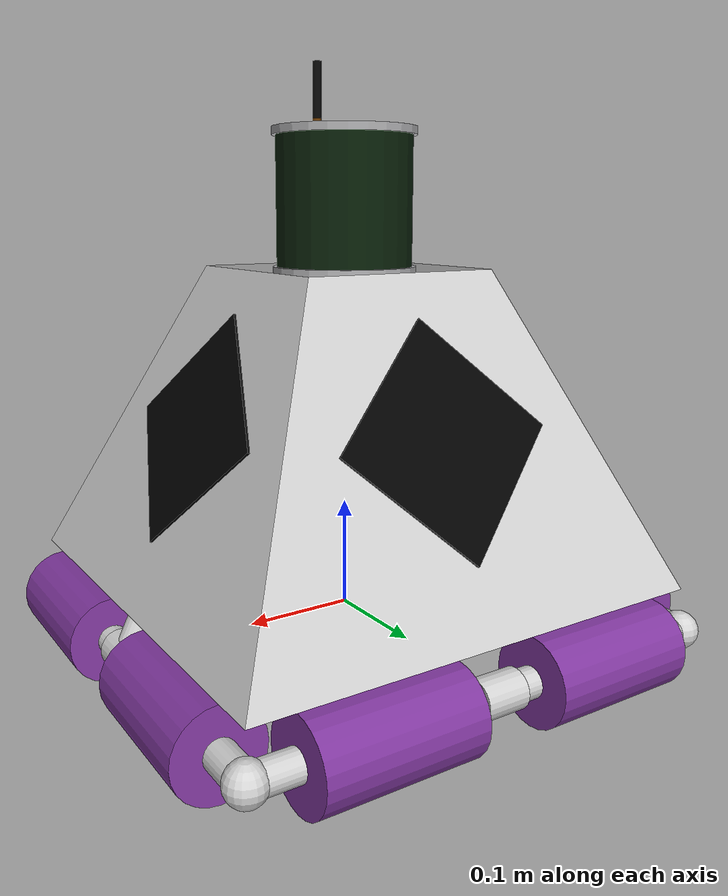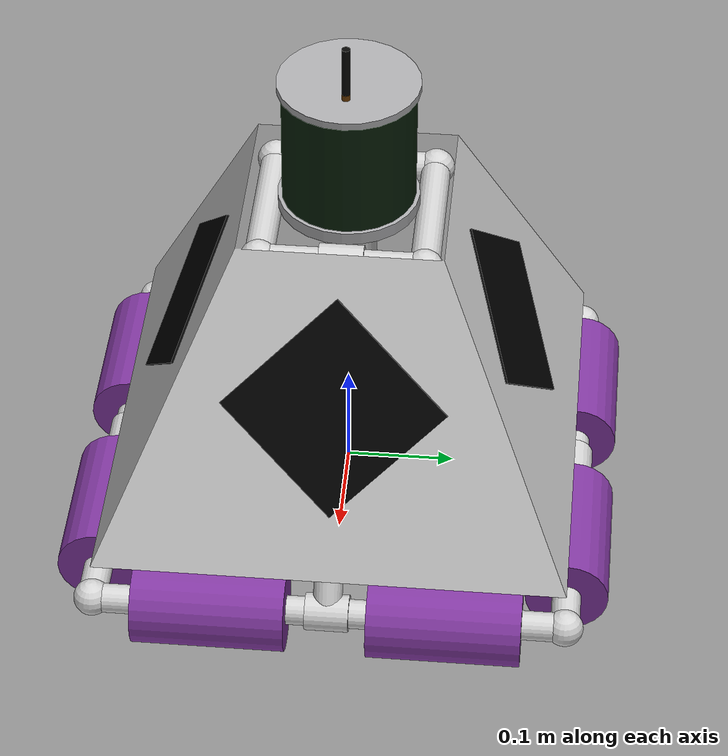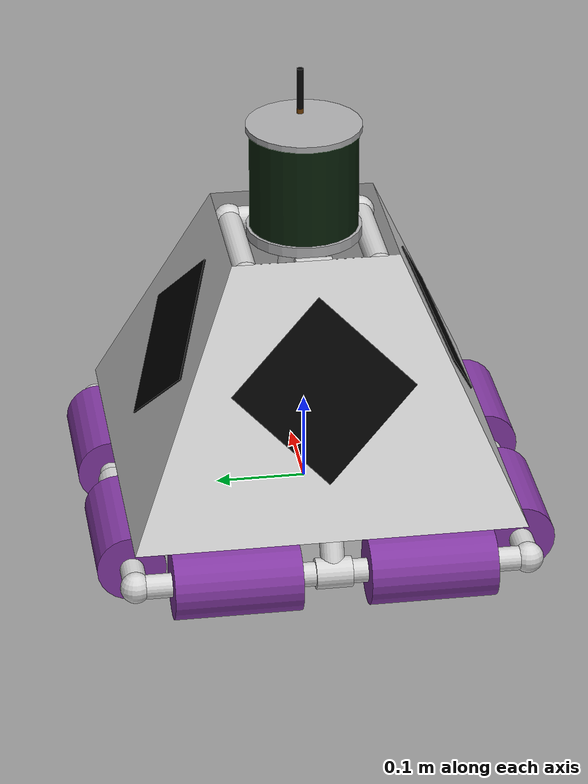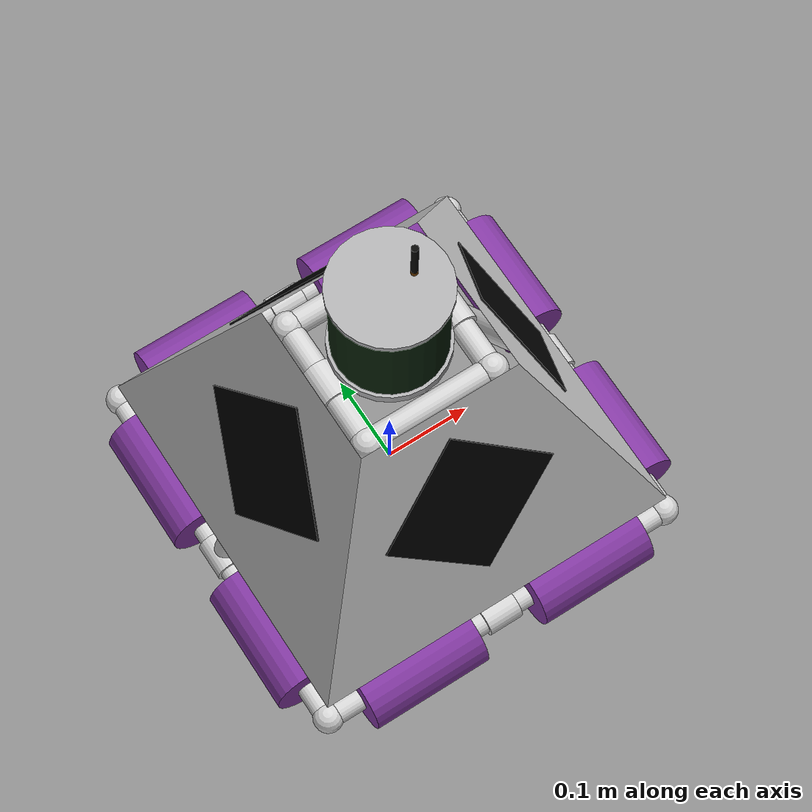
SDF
<?xml version="1.0"?>
<sdf version="1.9">
  <model name="roboboat_color_indicator_buoy_green">
    <link name="link">
      <inertial>
        <pose>0 0 -0.2 0 0 0</pose>
        <mass>2.5</mass>
        <inertia>
          <ixx>0.08</ixx>
          <ixy>0</ixy>
          <ixz>0</ixz>
          <iyy>0.08</iyy>
          <iyz>0</iyz>
          <izz>0.08</izz>
        </inertia>
      </inertial>
      <collision name="panels_collision">
        <pose>0 0 0.1778 0 0 0</pose>
        <geometry>
          <box><size>0.4318 0.4318 0.2794</size></box>
        </geometry>
      </collision>
      <collision name="indicator_collision">
        <pose>0 0 0.3726 0 0 0</pose>
        <geometry>
          <cylinder><radius>0.064</radius><length>0.1315</length></cylinder>
        </geometry>
      </collision>
      <collision name="floats_collision">
        <geometry>
          <box><size>0.53 0.53 0.0762</size></box>
        </geometry>
      </collision>
      <visual name="panels">
        <geometry>
          <mesh>
            <uri>model://roboboat_color_indicator_buoy_red/meshes/frustum.obj</uri>
          </mesh>
        </geometry>
        <material>
          <ambient>0.8276 0.8276 0.8276 1</ambient>
          <diffuse>0.8276 0.8276 0.8276 1</diffuse>
          <specular>0.1 0.1 0.1 1</specular>
        </material>
      </visual>
      <visual name="diamond_0">
        <pose>0.151 0 0.189 0.7854 -0.4172 0</pose>
        <geometry>
          <box><size>0.002 0.1437 0.1437</size></box>
        </geometry>
        <material>
          <ambient>0.0044 0.0044 0.0044 1</ambient>
          <diffuse>0.0044 0.0044 0.0044 1</diffuse>
          <specular>0.1 0.1 0.1 1</specular>
        </material>
      </visual>
      <visual name="diamond_1">
        <pose>0 0.151 0.189 0.7854 -0.4172 1.5708</pose>
        <geometry>
          <box><size>0.002 0.1437 0.1437</size></box>
        </geometry>
        <material>
          <ambient>0.0044 0.0044 0.0044 1</ambient>
          <diffuse>0.0044 0.0044 0.0044 1</diffuse>
          <specular>0.1 0.1 0.1 1</specular>
        </material>
      </visual>
      <visual name="diamond_2">
        <pose>-0.151 0 0.189 0.7854 -0.4172 3.1416</pose>
        <geometry>
          <box><size>0.002 0.1437 0.1437</size></box>
        </geometry>
        <material>
          <ambient>0.0044 0.0044 0.0044 1</ambient>
          <diffuse>0.0044 0.0044 0.0044 1</diffuse>
          <specular>0.1 0.1 0.1 1</specular>
        </material>
      </visual>
      <visual name="diamond_3">
        <pose>0 -0.151 0.189 0.7854 -0.4172 -1.5708</pose>
        <geometry>
          <box><size>0.002 0.1437 0.1437</size></box>
        </geometry>
        <material>
          <ambient>0.0044 0.0044 0.0044 1</ambient>
          <diffuse>0.0044 0.0044 0.0044 1</diffuse>
          <specular>0.1 0.1 0.1 1</specular>
        </material>
      </visual>
      <visual name="pvc_bottom_0">
        <pose>0.2159 0 0 1.5708 0 0</pose>
        <geometry>
          <cylinder><radius>0.0133</radius><length>0.4318</length></cylinder>
        </geometry>
        <material>
          <ambient>0.8276 0.8276 0.8276 1</ambient>
          <diffuse>0.8276 0.8276 0.8276 1</diffuse>
          <specular>0.1 0.1 0.1 1</specular>
        </material>
      </visual>
      <visual name="elbow_bottom_0">
        <pose>0.2159 0.2159 0 0 0 0</pose>
        <geometry>
          <sphere><radius>0.017</radius></sphere>
        </geometry>
        <material>
          <ambient>0.8276 0.8276 0.8276 1</ambient>
          <diffuse>0.8276 0.8276 0.8276 1</diffuse>
          <specular>0.1 0.1 0.1 1</specular>
        </material>
      </visual>
      <visual name="tee_bottom_0">
        <pose>0.2159 0 0 1.5708 0 0</pose>
        <geometry>
          <cylinder><radius>0.017</radius><length>0.04</length></cylinder>
        </geometry>
        <material>
          <ambient>0.8276 0.8276 0.8276 1</ambient>
          <diffuse>0.8276 0.8276 0.8276 1</diffuse>
          <specular>0.1 0.1 0.1 1</specular>
        </material>
      </visual>
      <visual name="pvc_top_0">
        <pose>0.0737 0 0.2935 1.5708 0 0</pose>
        <geometry>
          <cylinder><radius>0.0133</radius><length>0.1473</length></cylinder>
        </geometry>
        <material>
          <ambient>0.8276 0.8276 0.8276 1</ambient>
          <diffuse>0.8276 0.8276 0.8276 1</diffuse>
          <specular>0.1 0.1 0.1 1</specular>
        </material>
      </visual>
      <visual name="elbow_top_0">
        <pose>0.0737 0.0737 0.2935 0 0 0</pose>
        <geometry>
          <sphere><radius>0.017</radius></sphere>
        </geometry>
        <material>
          <ambient>0.8276 0.8276 0.8276 1</ambient>
          <diffuse>0.8276 0.8276 0.8276 1</diffuse>
          <specular>0.1 0.1 0.1 1</specular>
        </material>
      </visual>
      <visual name="strut_0">
        <pose>0.1448 0 0.1468 0 0.4512 3.1416</pose>
        <geometry>
          <cylinder><radius>0.0133</radius><length>0.3262</length></cylinder>
        </geometry>
        <material>
          <ambient>0.8276 0.8276 0.8276 1</ambient>
          <diffuse>0.8276 0.8276 0.8276 1</diffuse>
          <specular>0.1 0.1 0.1 1</specular>
        </material>
      </visual>
      <visual name="tee_top_0">
        <pose>0.0737 0 0.2935 1.5708 0 0</pose>
        <geometry>
          <cylinder><radius>0.017</radius><length>0.04</length></cylinder>
        </geometry>
        <material>
          <ambient>0.8276 0.8276 0.8276 1</ambient>
          <diffuse>0.8276 0.8276 0.8276 1</diffuse>
          <specular>0.1 0.1 0.1 1</specular>
        </material>
      </visual>
      <visual name="pvc_bottom_1">
        <pose>0 0.2159 0 1.5708 0 1.5708</pose>
        <geometry>
          <cylinder><radius>0.0133</radius><length>0.4318</length></cylinder>
        </geometry>
        <material>
          <ambient>0.8276 0.8276 0.8276 1</ambient>
          <diffuse>0.8276 0.8276 0.8276 1</diffuse>
          <specular>0.1 0.1 0.1 1</specular>
        </material>
      </visual>
      <visual name="elbow_bottom_1">
        <pose>-0.2159 0.2159 0 0 0 0</pose>
        <geometry>
          <sphere><radius>0.017</radius></sphere>
        </geometry>
        <material>
          <ambient>0.8276 0.8276 0.8276 1</ambient>
          <diffuse>0.8276 0.8276 0.8276 1</diffuse>
          <specular>0.1 0.1 0.1 1</specular>
        </material>
      </visual>
      <visual name="tee_bottom_1">
        <pose>0 0.2159 0 1.5708 0 1.5708</pose>
        <geometry>
          <cylinder><radius>0.017</radius><length>0.04</length></cylinder>
        </geometry>
        <material>
          <ambient>0.8276 0.8276 0.8276 1</ambient>
          <diffuse>0.8276 0.8276 0.8276 1</diffuse>
          <specular>0.1 0.1 0.1 1</specular>
        </material>
      </visual>
      <visual name="pvc_top_1">
        <pose>0 0.0737 0.2935 1.5708 0 1.5708</pose>
        <geometry>
          <cylinder><radius>0.0133</radius><length>0.1473</length></cylinder>
        </geometry>
        <material>
          <ambient>0.8276 0.8276 0.8276 1</ambient>
          <diffuse>0.8276 0.8276 0.8276 1</diffuse>
          <specular>0.1 0.1 0.1 1</specular>
        </material>
      </visual>
      <visual name="elbow_top_1">
        <pose>-0.0737 0.0737 0.2935 0 0 0</pose>
        <geometry>
          <sphere><radius>0.017</radius></sphere>
        </geometry>
        <material>
          <ambient>0.8276 0.8276 0.8276 1</ambient>
          <diffuse>0.8276 0.8276 0.8276 1</diffuse>
          <specular>0.1 0.1 0.1 1</specular>
        </material>
      </visual>
      <visual name="pvc_bottom_2">
        <pose>-0.2159 0 0 1.5708 0 3.1416</pose>
        <geometry>
          <cylinder><radius>0.0133</radius><length>0.4318</length></cylinder>
        </geometry>
        <material>
          <ambient>0.8276 0.8276 0.8276 1</ambient>
          <diffuse>0.8276 0.8276 0.8276 1</diffuse>
          <specular>0.1 0.1 0.1 1</specular>
        </material>
      </visual>
      <visual name="elbow_bottom_2">
        <pose>-0.2159 -0.2159 0 0 0 0</pose>
        <geometry>
          <sphere><radius>0.017</radius></sphere>
        </geometry>
        <material>
          <ambient>0.8276 0.8276 0.8276 1</ambient>
          <diffuse>0.8276 0.8276 0.8276 1</diffuse>
          <specular>0.1 0.1 0.1 1</specular>
        </material>
      </visual>
      <visual name="tee_bottom_2">
        <pose>-0.2159 0 0 1.5708 0 3.1416</pose>
        <geometry>
          <cylinder><radius>0.017</radius><length>0.04</length></cylinder>
        </geometry>
        <material>
          <ambient>0.8276 0.8276 0.8276 1</ambient>
          <diffuse>0.8276 0.8276 0.8276 1</diffuse>
          <specular>0.1 0.1 0.1 1</specular>
        </material>
      </visual>
      <visual name="pvc_top_2">
        <pose>-0.0737 0 0.2935 1.5708 0 3.1416</pose>
        <geometry>
          <cylinder><radius>0.0133</radius><length>0.1473</length></cylinder>
        </geometry>
        <material>
          <ambient>0.8276 0.8276 0.8276 1</ambient>
          <diffuse>0.8276 0.8276 0.8276 1</diffuse>
          <specular>0.1 0.1 0.1 1</specular>
        </material>
      </visual>
      <visual name="elbow_top_2">
        <pose>-0.0737 -0.0737 0.2935 0 0 0</pose>
        <geometry>
          <sphere><radius>0.017</radius></sphere>
        </geometry>
        <material>
          <ambient>0.8276 0.8276 0.8276 1</ambient>
          <diffuse>0.8276 0.8276 0.8276 1</diffuse>
          <specular>0.1 0.1 0.1 1</specular>
        </material>
      </visual>
      <visual name="strut_2">
        <pose>-0.1448 0 0.1468 0 0.4512 0</pose>
        <geometry>
          <cylinder><radius>0.0133</radius><length>0.3262</length></cylinder>
        </geometry>
        <material>
          <ambient>0.8276 0.8276 0.8276 1</ambient>
          <diffuse>0.8276 0.8276 0.8276 1</diffuse>
          <specular>0.1 0.1 0.1 1</specular>
        </material>
      </visual>
      <visual name="tee_top_2">
        <pose>-0.0737 0 0.2935 1.5708 0 3.1416</pose>
        <geometry>
          <cylinder><radius>0.017</radius><length>0.04</length></cylinder>
        </geometry>
        <material>
          <ambient>0.8276 0.8276 0.8276 1</ambient>
          <diffuse>0.8276 0.8276 0.8276 1</diffuse>
          <specular>0.1 0.1 0.1 1</specular>
        </material>
      </visual>
      <visual name="pvc_bottom_3">
        <pose>0 -0.2159 0 1.5708 0 4.7124</pose>
        <geometry>
          <cylinder><radius>0.0133</radius><length>0.4318</length></cylinder>
        </geometry>
        <material>
          <ambient>0.8276 0.8276 0.8276 1</ambient>
          <diffuse>0.8276 0.8276 0.8276 1</diffuse>
          <specular>0.1 0.1 0.1 1</specular>
        </material>
      </visual>
      <visual name="elbow_bottom_3">
        <pose>0.2159 -0.2159 0 0 0 0</pose>
        <geometry>
          <sphere><radius>0.017</radius></sphere>
        </geometry>
        <material>
          <ambient>0.8276 0.8276 0.8276 1</ambient>
          <diffuse>0.8276 0.8276 0.8276 1</diffuse>
          <specular>0.1 0.1 0.1 1</specular>
        </material>
      </visual>
      <visual name="tee_bottom_3">
        <pose>0 -0.2159 0 1.5708 0 4.7124</pose>
        <geometry>
          <cylinder><radius>0.017</radius><length>0.04</length></cylinder>
        </geometry>
        <material>
          <ambient>0.8276 0.8276 0.8276 1</ambient>
          <diffuse>0.8276 0.8276 0.8276 1</diffuse>
          <specular>0.1 0.1 0.1 1</specular>
        </material>
      </visual>
      <visual name="pvc_top_3">
        <pose>0 -0.0737 0.2935 1.5708 0 4.7124</pose>
        <geometry>
          <cylinder><radius>0.0133</radius><length>0.1473</length></cylinder>
        </geometry>
        <material>
          <ambient>0.8276 0.8276 0.8276 1</ambient>
          <diffuse>0.8276 0.8276 0.8276 1</diffuse>
          <specular>0.1 0.1 0.1 1</specular>
        </material>
      </visual>
      <visual name="elbow_top_3">
        <pose>0.0737 -0.0737 0.2935 0 0 0</pose>
        <geometry>
          <sphere><radius>0.017</radius></sphere>
        </geometry>
        <material>
          <ambient>0.8276 0.8276 0.8276 1</ambient>
          <diffuse>0.8276 0.8276 0.8276 1</diffuse>
          <specular>0.1 0.1 0.1 1</specular>
        </material>
      </visual>
      <visual name="float_0">
        <pose>0.2159 -0.107 0 1.5708 0 0</pose>
        <geometry>
          <cylinder><radius>0.0381</radius><length>0.1397</length></cylinder>
        </geometry>
        <material>
          <ambient>0.5086 0.2196 0.6313 1</ambient>
          <diffuse>0.5086 0.2196 0.6313 1</diffuse>
          <specular>0.1 0.1 0.1 1</specular>
        </material>
      </visual>
      <visual name="float_1">
        <pose>0.2159 0.107 0 1.5708 0 0</pose>
        <geometry>
          <cylinder><radius>0.0381</radius><length>0.1397</length></cylinder>
        </geometry>
        <material>
          <ambient>0.5086 0.2196 0.6313 1</ambient>
          <diffuse>0.5086 0.2196 0.6313 1</diffuse>
          <specular>0.1 0.1 0.1 1</specular>
        </material>
      </visual>
      <visual name="float_2">
        <pose>0.107 0.2159 0 1.5708 0 1.5708</pose>
        <geometry>
          <cylinder><radius>0.0381</radius><length>0.1397</length></cylinder>
        </geometry>
        <material>
          <ambient>0.5086 0.2196 0.6313 1</ambient>
          <diffuse>0.5086 0.2196 0.6313 1</diffuse>
          <specular>0.1 0.1 0.1 1</specular>
        </material>
      </visual>
      <visual name="float_3">
        <pose>-0.107 0.2159 0 1.5708 0 1.5708</pose>
        <geometry>
          <cylinder><radius>0.0381</radius><length>0.1397</length></cylinder>
        </geometry>
        <material>
          <ambient>0.5086 0.2196 0.6313 1</ambient>
          <diffuse>0.5086 0.2196 0.6313 1</diffuse>
          <specular>0.1 0.1 0.1 1</specular>
        </material>
      </visual>
      <visual name="float_4">
        <pose>-0.2159 0.107 0 1.5708 0 3.1416</pose>
        <geometry>
          <cylinder><radius>0.0381</radius><length>0.1397</length></cylinder>
        </geometry>
        <material>
          <ambient>0.5086 0.2196 0.6313 1</ambient>
          <diffuse>0.5086 0.2196 0.6313 1</diffuse>
          <specular>0.1 0.1 0.1 1</specular>
        </material>
      </visual>
      <visual name="float_5">
        <pose>-0.2159 -0.107 0 1.5708 0 3.1416</pose>
        <geometry>
          <cylinder><radius>0.0381</radius><length>0.1397</length></cylinder>
        </geometry>
        <material>
          <ambient>0.5086 0.2196 0.6313 1</ambient>
          <diffuse>0.5086 0.2196 0.6313 1</diffuse>
          <specular>0.1 0.1 0.1 1</specular>
        </material>
      </visual>
      <visual name="float_6">
        <pose>-0.107 -0.2159 0 1.5708 0 4.7124</pose>
        <geometry>
          <cylinder><radius>0.0381</radius><length>0.1397</length></cylinder>
        </geometry>
        <material>
          <ambient>0.5086 0.2196 0.6313 1</ambient>
          <diffuse>0.5086 0.2196 0.6313 1</diffuse>
          <specular>0.1 0.1 0.1 1</specular>
        </material>
      </visual>
      <visual name="float_7">
        <pose>0.107 -0.2159 0 1.5708 0 4.7124</pose>
        <geometry>
          <cylinder><radius>0.0381</radius><length>0.1397</length></cylinder>
        </geometry>
        <material>
          <ambient>0.5086 0.2196 0.6313 1</ambient>
          <diffuse>0.5086 0.2196 0.6313 1</diffuse>
          <specular>0.1 0.1 0.1 1</specular>
        </material>
      </visual>
      <visual name="base">
        <pose>0 0 0.3127 0 0 0</pose>
        <geometry>
          <cylinder><radius>0.064</radius><length>0.0118</length></cylinder>
        </geometry>
        <material>
          <ambient>0.6793 0.6793 0.6866 1</ambient>
          <diffuse>0.6793 0.6793 0.6866 1</diffuse>
          <specular>0.1 0.1 0.1 1</specular>
        </material>
      </visual>
      <visual name="indicator">
        <pose>0 0 0.3751 0 0 0</pose>
        <geometry>
          <cylinder><radius>0.0604</radius><length>0.113</length></cylinder>
        </geometry>
        <material>
          <ambient>0.0344 0.1273 0.037 1</ambient>
          <diffuse>0.0344 0.1273 0.037 1</diffuse>
          <specular>0.1 0.1 0.1 1</specular>
        </material>
      </visual>
      <visual name="lid">
        <pose>0 0 0.435 0 0 0</pose>
        <geometry>
          <cylinder><radius>0.064</radius><length>0.0068</length></cylinder>
        </geometry>
        <material>
          <ambient>0.6793 0.6793 0.6866 1</ambient>
          <diffuse>0.6793 0.6793 0.6866 1</diffuse>
          <specular>0.1 0.1 0.1 1</specular>
        </material>
      </visual>
      <visual name="antenna_base">
        <pose>0.0277 0 0.4413 0 0 0</pose>
        <geometry>
          <cylinder><radius>0.0038</radius><length>0.0057</length></cylinder>
        </geometry>
        <material>
          <ambient>0.4339 0.2379 0.013 1</ambient>
          <diffuse>0.4339 0.2379 0.013 1</diffuse>
          <specular>0.1 0.1 0.1 1</specular>
        </material>
      </visual>
      <visual name="antenna">
        <pose>0.0277 0 0.4675 0 0 0</pose>
        <geometry>
          <cylinder><radius>0.0038</radius><length>0.0467</length></cylinder>
        </geometry>
        <material>
          <ambient>0.0272 0.0272 0.0253 1</ambient>
          <diffuse>0.0272 0.0272 0.0253 1</diffuse>
          <specular>0.1 0.1 0.1 1</specular>
        </material>
      </visual>
    </link>
    <joint name="mooring" type="prismatic">
      <parent>world</parent>
      <child>link</child>
      <axis>
        <xyz>0 0 1</xyz>
      </axis>
    </joint>
    <plugin name="vrx::PolyhedraBuoyancyDrag" filename="libPolyhedraBuoyancyDrag.so">
      <linear_drag>25</linear_drag>
      <angular_drag>2</angular_drag>
      <buoyancy name="float_0">
        <link_name>link</link_name>
        <pose>0.2159 -0.107 0 1.5708 0 0</pose>
        <geometry>
          <cylinder><radius>0.0381</radius><length>0.1397</length></cylinder>
        </geometry>
      </buoyancy>
      <buoyancy name="float_1">
        <link_name>link</link_name>
        <pose>0.2159 0.107 0 1.5708 0 0</pose>
        <geometry>
          <cylinder><radius>0.0381</radius><length>0.1397</length></cylinder>
        </geometry>
      </buoyancy>
      <buoyancy name="float_2">
        <link_name>link</link_name>
        <pose>0.107 0.2159 0 1.5708 0 1.5708</pose>
        <geometry>
          <cylinder><radius>0.0381</radius><length>0.1397</length></cylinder>
        </geometry>
      </buoyancy>
      <buoyancy name="float_3">
        <link_name>link</link_name>
        <pose>-0.107 0.2159 0 1.5708 0 1.5708</pose>
        <geometry>
          <cylinder><radius>0.0381</radius><length>0.1397</length></cylinder>
        </geometry>
      </buoyancy>
      <buoyancy name="float_4">
        <link_name>link</link_name>
        <pose>-0.2159 0.107 0 1.5708 0 3.1416</pose>
        <geometry>
          <cylinder><radius>0.0381</radius><length>0.1397</length></cylinder>
        </geometry>
      </buoyancy>
      <buoyancy name="float_5">
        <link_name>link</link_name>
        <pose>-0.2159 -0.107 0 1.5708 0 3.1416</pose>
        <geometry>
          <cylinder><radius>0.0381</radius><length>0.1397</length></cylinder>
        </geometry>
      </buoyancy>
      <buoyancy name="float_6">
        <link_name>link</link_name>
        <pose>-0.107 -0.2159 0 1.5708 0 4.7124</pose>
        <geometry>
          <cylinder><radius>0.0381</radius><length>0.1397</length></cylinder>
        </geometry>
      </buoyancy>
      <buoyancy name="float_7">
        <link_name>link</link_name>
        <pose>0.107 -0.2159 0 1.5708 0 4.7124</pose>
        <geometry>
          <cylinder><radius>0.0381</radius><length>0.1397</length></cylinder>
        </geometry>
      </buoyancy>
      <wavefield>
        <topic>/vrx/wavefield/parameters</topic>
      </wavefield>
    </plugin>
    <plugin filename="gz-sim-label-system" name="gz::sim::systems::Label">
      <label>43</label>
    </plugin>
  </model>
</sdf>
